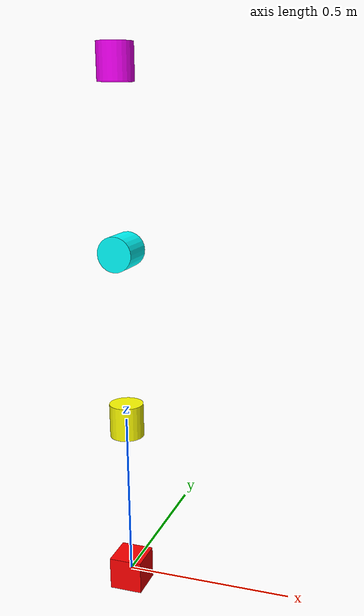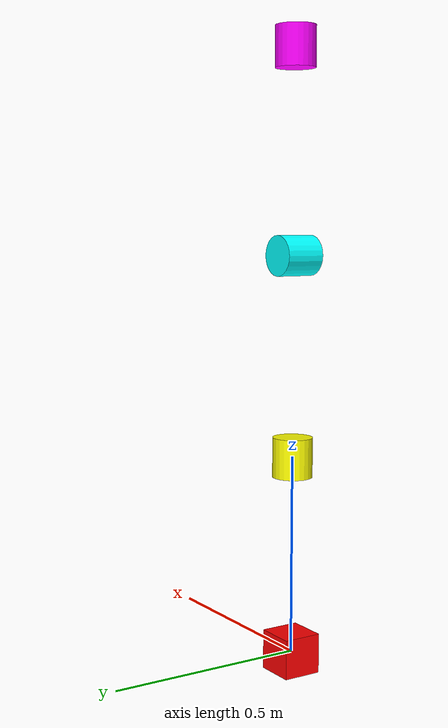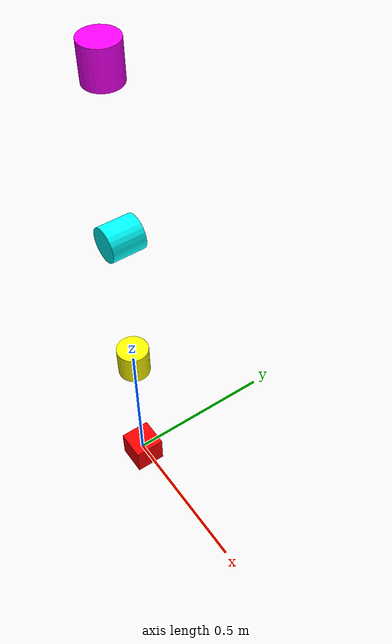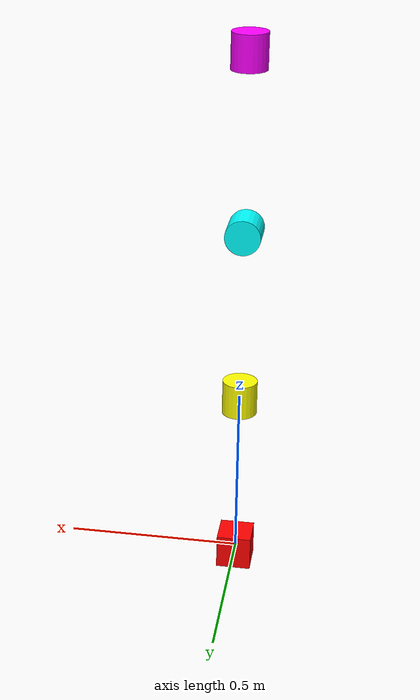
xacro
<?xml version="1.0" encoding="UTF-8"?>
<robot xmlns:xacro="http://www.ros.org/wiki/xacro" name="manipulator">
    <xacro:macro name="gen_joint" params="name xyz rpy axis child parent lower upper type">
        <joint name="${name}" type="${type}">
            <origin xyz="${xyz}" rpy="${rpy}" />
            <parent link="${parent}" />
            <child link="${child}" />
            <axis xyz="${axis}" />
            <limit lower="${lower}" upper="${upper}" effort="1.0" velocity="1.0" />
        </joint>
    </xacro:macro>

    <xacro:macro name="prism_joint" params="name xyz rpy axis child parent lower upper">
        <xacro:gen_joint
            name="${name}"
            xyz="${xyz}"
            rpy="${rpy}"
            axis="${axis}"
            child="${child}"
            parent="${parent}"
            lower="${lower}"
            upper="${upper}"
            type="prismatic" />
    </xacro:macro>

    <xacro:macro name="rev_joint" params="name xyz rpy axis child parent lower upper">
        <xacro:gen_joint
            name="${name}"
            xyz="${xyz}"
            rpy="${rpy}"
            axis="${axis}"
            child="${child}"
            parent="${parent}"
            lower="${lower}"
            upper="${upper}"
            type="revolute" />
    </xacro:macro>

    <xacro:macro name="link" params="name xyz rpy color *geometry">
        <link name="${name}">
            <visual>
                <origin xyz="${xyz}" rpy="${rpy}" />
                <geometry>
                    <xacro:insert_block name="geometry" />
                </geometry>
                <material name="material_${name}">
                    <color rgba="${color} 1.0" />
                </material>
            </visual>
            <collision>
                <origin xyz="${xyz}" rpy="${rpy}" />
                <geometry>
                    <xacro:insert_block name="geometry" />
                </geometry>
            </collision>
        </link>
    </xacro:macro>

    <xacro:macro name="box_link" params="name xyz rpy color">
        <xacro:link name="${name}" xyz="${xyz}" rpy="${rpy}" color="${color}">
            <box size="0.1 0.1 0.1" />
        </xacro:link>
    </xacro:macro>

    <xacro:macro name="cyl_link" params="name xyz rpy color">
        <xacro:link name="${name}" xyz="${xyz}" rpy="${rpy}" color="${color}">
            <cylinder length="0.1" radius="0.05" />
        </xacro:link>
    </xacro:macro>

    <xacro:macro name="sphere_link" params="name xyz rpy color">
        <xacro:link name="${name}" xyz="${xyz}" rpy="${rpy}" color="${color}">
            <sphere radius="0.05" />
        </xacro:link>
    </xacro:macro>

    <xacro:box_link
        name="base"
        xyz="0.0 0.0 0.0"
        rpy="0.0 0.0 0.0"
        color="1.0 0.0 0.0" />

    <xacro:box_link
        name="link1"
        xyz="0.0 0.0 0.0"
        rpy="0.0 0.0 0.0"
        color="0.0 1.0 0.0" />

    <!-- Translation along X-axis -->
    <xacro:prism_joint
        name="joint1"
        xyz="0.0 0.0 0.0"
        rpy="0.0 0.0 0.0"
        axis="1.0 0.0 0.0"
        child="link1"
        parent="base"
        lower="-1.0"
        upper="1.0" />

    <xacro:box_link
        name="link2"
        xyz="0.0 0.0 0.0"
        rpy="0.0 0.0 0.0"
        color="0.0 0.0 1.0" />

    <!-- Translation along Y-axis -->
    <xacro:prism_joint
        name="joint2"
        xyz="0.0 0.0 0.0"
        rpy="0.0 0.0 0.0"
        axis="0.0 1.0 0.0"
        child="link2"
        parent="link1"
        lower="-1.0"
        upper="1.0" />

    <xacro:cyl_link
        name="link3"
        xyz="0.0 0.0 0.0"
        rpy="0.0 0.0 0.0"
        color="1.0 1.0 0.0" />

    <!-- Revolute around Z-axis -->
    <xacro:rev_joint
        name="joint3"
        xyz="0.0 0.0 0.5"
        rpy="0.0 0.0 0.0"
        axis="0.0 0.0 1.0"
        child="link3"
        parent="link2"
        lower="-${pi - 0.05}"
        upper="${pi - 0.05}" />

    <xacro:cyl_link
        name="link4"
        xyz="0.0 0.0 0.0"
        rpy="1.57 0.0 0.0"
        color="0.0 1.0 1.0" />

    <!-- Revolute around Y-axis -->
    <xacro:rev_joint
        name="joint4"
        xyz="0.0 0.0 0.5"
        rpy="0.0 -1.57 0.0"
        axis="0.0 1.0 0.0"
        child="link4"
        parent="link3"
        lower="-${pi - 0.05}"
        upper="${pi - 0.05}" />

    <xacro:cyl_link
        name="link5"
        xyz="0.0 0.0 0.0"
        rpy="0.0 1.57 0.0"
        color="1.0 0.0 1.0" />

    <!-- Revolute around X-axis -->
    <xacro:rev_joint
        name="joint5"
        xyz="0.5 0.0 0.0"
        rpy="0.0 0.0 0.0"
        axis="1.0 0.0 0.0"
        child="link5"
        parent="link4"
        lower="-${pi - 0.05}"
        upper="${pi - 0.05}" />

</robot>
